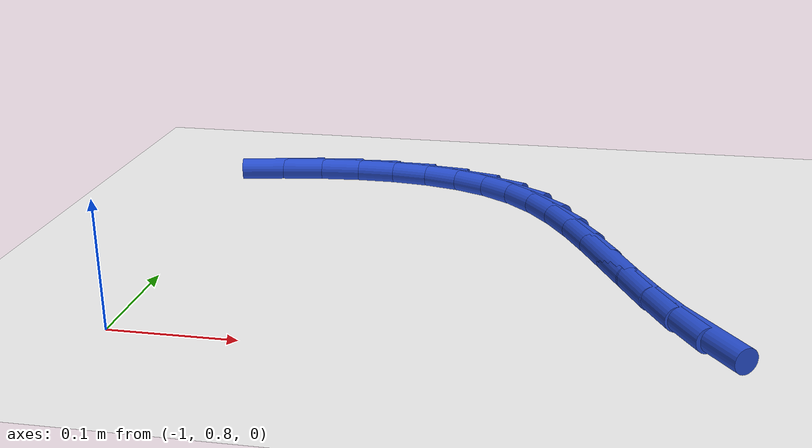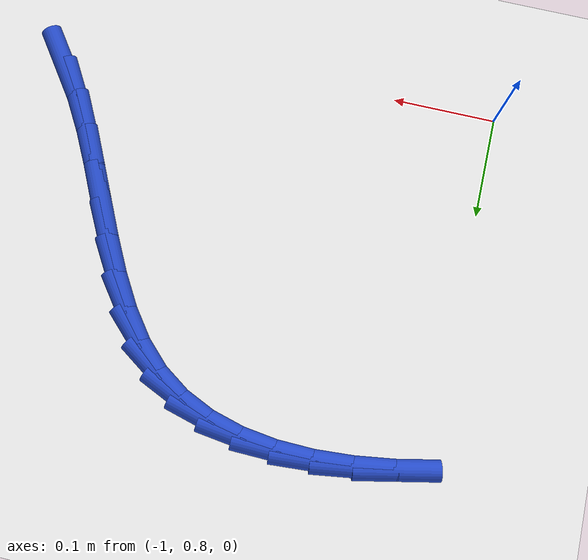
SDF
<sdf version="1.6">
 <world name="default">
  <model name="ground_plane">
   <static>1</static>
   <link name="link">
    <collision name="collision">
     <geometry><plane><normal>0 0 1</normal><size>100 100</size></plane></geometry>
     <surface><friction><ode><mu>100</mu><mu2>50</mu2></ode></friction></surface>
    </collision>
    <visual name="visual">
     <cast_shadows>0</cast_shadows>
     <geometry><plane><normal>0 0 1</normal><size>100 100</size></plane></geometry>
     <material>
      <script><uri>file://media/materials/scripts/gazebo.material</uri><name>Gazebo/WhiteGlow</name></script>
     </material>
    </visual>
   </link>
  </model>
  <model name="line">
   <link name="link_31">
    <pose>-0.5729030590916553 0.8420061693519507 0.01 0 1.57 -0.9521379869353082</pose>
    <collision name="collision">
     <geometry><cylinder><radius>0.01</radius><length>0.08</length></cylinder></geometry>
    </collision>
    <visual name="visual">
     <material>
      <script><name>Gazebo/Blue</name><uri>file://media/materials/scripts/gazebo.material</uri></script>
     </material>
     <geometry><cylinder><radius>0.01</radius><length>0.08</length></cylinder></geometry>
    </visual>
   </link>
   <link name="link_32">
    <pose>-0.5936593059784434 0.8711628909442432 0.01 0 1.57 -1.0419528258431332</pose>
    <collision name="collision">
     <geometry><cylinder><radius>0.01</radius><length>0.08</length></cylinder></geometry>
    </collision>
    <visual name="visual">
     <material>
      <script><name>Gazebo/Blue</name><uri>file://media/materials/scripts/gazebo.material</uri></script>
     </material>
     <geometry><cylinder><radius>0.01</radius><length>0.08</length></cylinder></geometry>
    </visual>
   </link>
   <link name="link_33">
    <pose>-0.6122411909532381 0.9029613381424624 0.01 0 1.57 -1.0982707406018197</pose>
    <collision name="collision">
     <geometry><cylinder><radius>0.01</radius><length>0.08</length></cylinder></geometry>
    </collision>
    <visual name="visual">
     <material>
      <script><name>Gazebo/Blue</name><uri>file://media/materials/scripts/gazebo.material</uri></script>
     </material>
     <geometry><cylinder><radius>0.01</radius><length>0.08</length></cylinder></geometry>
    </visual>
   </link>
   <link name="link_34">
    <pose>-0.6293417046878228 0.9364164997216838 0.01 0 1.57 -1.1249152284754242</pose>
    <collision name="collision">
     <geometry><cylinder><radius>0.01</radius><length>0.08</length></cylinder></geometry>
    </collision>
    <visual name="visual">
     <material>
      <script><name>Gazebo/Blue</name><uri>file://media/materials/scripts/gazebo.material</uri></script>
     </material>
     <geometry><cylinder><radius>0.01</radius><length>0.08</length></cylinder></geometry>
    </visual>
   </link>
   <link name="link_35">
    <pose>-0.6456538378539805 0.9705433644569835 0.01 0 1.57 -1.1236072344784087</pose>
    <collision name="collision">
     <geometry><cylinder><radius>0.01</radius><length>0.08</length></cylinder></geometry>
    </collision>
    <visual name="visual">
     <material>
      <script><name>Gazebo/Blue</name><uri>file://media/materials/scripts/gazebo.material</uri></script>
     </material>
     <geometry><cylinder><radius>0.01</radius><length>0.08</length></cylinder></geometry>
    </visual>
   </link>
   <link name="link_36">
    <pose>-0.6618705811234942 1.0043569211234369 0.01 0 1.57 -1.093545144004028</pose>
    <collision name="collision">
     <geometry><cylinder><radius>0.01</radius><length>0.08</length></cylinder></geometry>
    </collision>
    <visual name="visual">
     <material>
      <script><name>Gazebo/Blue</name><uri>file://media/materials/scripts/gazebo.material</uri></script>
     </material>
     <geometry><cylinder><radius>0.01</radius><length>0.08</length></cylinder></geometry>
    </visual>
   </link>
   <link name="link_37">
    <pose>-0.6786849251681473 1.03687215849612 0.01 0 1.57 -1.0312092568120015</pose>
    <collision name="collision">
     <geometry><cylinder><radius>0.01</radius><length>0.08</length></cylinder></geometry>
    </collision>
    <visual name="visual">
     <material>
      <script><name>Gazebo/Blue</name><uri>file://media/materials/scripts/gazebo.material</uri></script>
     </material>
     <geometry><cylinder><radius>0.01</radius><length>0.08</length></cylinder></geometry>
    </visual>
   </link>
   <link name="link_38">
    <pose>-0.6967898606597228 1.067104065350108 0.01 0 1.57 -0.9304871265405741</pose>
    <collision name="collision">
     <geometry><cylinder><radius>0.01</radius><length>0.08</length></cylinder></geometry>
    </collision>
    <visual name="visual">
     <material>
      <script><name>Gazebo/Blue</name><uri>file://media/materials/scripts/gazebo.material</uri></script>
     </material>
     <geometry><cylinder><radius>0.01</radius><length>0.08</length></cylinder></geometry>
    </visual>
   </link>
   <link name="link_39">
    <pose>-0.7168783782700046 1.0940676304604777 0.01 0 1.57 -0.784192610109702</pose>
    <collision name="collision">
     <geometry><cylinder><radius>0.01</radius><length>0.08</length></cylinder></geometry>
    </collision>
    <visual name="visual">
     <material>
      <script><name>Gazebo/Blue</name><uri>file://media/materials/scripts/gazebo.material</uri></script>
     </material>
     <geometry><cylinder><radius>0.01</radius><length>0.08</length></cylinder></geometry>
    </visual>
   </link>
   <link name="link_40">
    <pose>-0.739643444233237 1.116777873488885 0.01 0 1.57 -0.5998632557916628</pose>
    <collision name="collision">
     <geometry><cylinder><radius>0.01</radius><length>0.08</length></cylinder></geometry>
    </collision>
    <visual name="visual">
     <material>
      <script><name>Gazebo/Blue</name><uri>file://media/materials/scripts/gazebo.material</uri></script>
     </material>
     <geometry><cylinder><radius>0.01</radius><length>0.08</length></cylinder></geometry>
    </visual>
   </link>
   <link name="link_41">
    <pose>-0.7655714149027426 1.134510948129543 0.01 0 1.57 -0.42101132649204476</pose>
    <collision name="collision">
     <geometry><cylinder><radius>0.01</radius><length>0.08</length></cylinder></geometry>
    </collision>
    <visual name="visual">
     <material>
      <script><name>Gazebo/Blue</name><uri>file://media/materials/scripts/gazebo.material</uri></script>
     </material>
     <geometry><cylinder><radius>0.01</radius><length>0.08</length></cylinder></geometry>
    </visual>
   </link>
   <link name="link_42">
    <pose>-0.7944404477542465 1.147438099966423 0.01 0 1.57 -0.2635994863551069</pose>
    <collision name="collision">
     <geometry><cylinder><radius>0.01</radius><length>0.08</length></cylinder></geometry>
    </collision>
    <visual name="visual">
     <material>
      <script><name>Gazebo/Blue</name><uri>file://media/materials/scripts/gazebo.material</uri></script>
     </material>
     <geometry><cylinder><radius>0.01</radius><length>0.08</length></cylinder></geometry>
    </visual>
   </link>
   <link name="link_43">
    <pose>-0.825877083795018 1.1559222024941886 0.01 0 1.57 -0.1302084017572697</pose>
    <collision name="collision">
     <geometry><cylinder><radius>0.01</radius><length>0.08</length></cylinder></geometry>
    </collision>
    <visual name="visual">
     <material>
      <script><name>Gazebo/Blue</name><uri>file://media/materials/scripts/gazebo.material</uri></script>
     </material>
     <geometry><cylinder><radius>0.01</radius><length>0.08</length></cylinder></geometry>
    </visual>
   </link>
   <link name="link_44">
    <pose>-0.8595078640323267 1.1603261292075036 0.01 0 1.57 -0.01936559035907604</pose>
    <collision name="collision">
     <geometry><cylinder><radius>0.01</radius><length>0.08</length></cylinder></geometry>
    </collision>
    <visual name="visual">
     <material>
      <script><name>Gazebo/Blue</name><uri>file://media/materials/scripts/gazebo.material</uri></script>
     </material>
     <geometry><cylinder><radius>0.01</radius><length>0.08</length></cylinder></geometry>
    </visual>
   </link>
   <link name="link_45">
    <pose>-0.8949593294734419 1.1610127536010317 0.01 0 1.57 0.07217519848140119</pose>
    <collision name="collision">
     <geometry><cylinder><radius>0.01</radius><length>0.08</length></cylinder></geometry>
    </collision>
    <visual name="visual">
     <material>
      <script><name>Gazebo/Blue</name><uri>file://media/materials/scripts/gazebo.material</uri></script>
     </material>
     <geometry><cylinder><radius>0.01</radius><length>0.08</length></cylinder></geometry>
    </visual>
   </link>
   <link name="link_46">
    <pose>-0.9318580211256334 1.158344949169437 0.01 0 1.57 0.14794951030648643</pose>
    <collision name="collision">
     <geometry><cylinder><radius>0.01</radius><length>0.08</length></cylinder></geometry>
    </collision>
    <visual name="visual">
     <material>
      <script><name>Gazebo/Blue</name><uri>file://media/materials/scripts/gazebo.material</uri></script>
     </material>
     <geometry><cylinder><radius>0.01</radius><length>0.08</length></cylinder></geometry>
    </visual>
   </link>
   <link name="link_47">
    <pose>-0.9698304799961703 1.1526855894073833 0.01 0 1.57 0.21111855221193981</pose>
    <collision name="collision">
     <geometry><cylinder><radius>0.01</radius><length>0.08</length></cylinder></geometry>
    </collision>
    <visual name="visual">
     <material>
      <script><name>Gazebo/Blue</name><uri>file://media/materials/scripts/gazebo.material</uri></script>
     </material>
     <geometry><cylinder><radius>0.01</radius><length>0.08</length></cylinder></geometry>
    </visual>
   </link>
  </model>
 </world>
</sdf>
